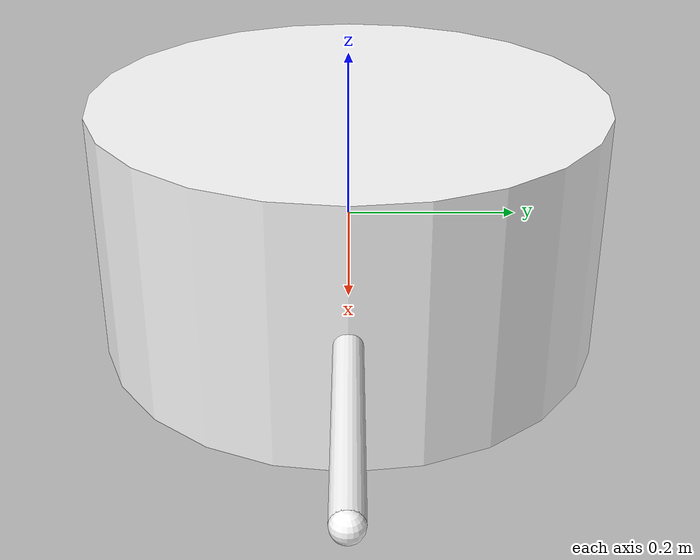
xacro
<?xml version="1.0"?>
<robot xmlns:xacro="http://www.ros.org/wiki/xacro" name="ouzel">

    <xacro:property name="mass_ouzel" value="5.0"/>
    <xacro:property name="ixx_ouzel" value="0.12"/>
    <xacro:property name="iyy_ouzel" value="0.14"/>
    <xacro:property name="izz_ouzel" value="0.18"/>
    <xacro:property name="radius_ouzel" value="0.3"/>
    <xacro:property name="height_ouzel" value="0.3"/>

    <link name="odom_omav"/>

    <joint name="odom_omav_to_omav_base" type="fixed">
        <parent link="odom_omav"/>
        <child link="omav_base"/>
        <origin rpy="0 0 0" xyz="0.0 0.0 0.0"/>
    </joint>

    <link name="omav_base">
        <collision>
            <origin rpy="0 0 0" xyz="0 0 0"/>
            <geometry>
                <cylinder radius="${radius_ouzel}" length="${height_ouzel}"/>
            </geometry>
        </collision>
        <visual>
            <origin rpy="0 0 0" xyz="0 0 0"/>
            <geometry>
                <cylinder radius="${radius_ouzel}" length="${height_ouzel}"/>
            </geometry>
            <material name="">
                <color rgba="1 1 1 1"/>
            </material>
        </visual>
    </link>

    <joint name="omav_to_rod" type="fixed">
        <parent link="omav_base"/>
        <child link="rod"/>
        <origin rpy="0 0 0" xyz="0.275 0.0 0.0"/>
    </joint>

    <link name="rod">
        <collision>
            <origin rpy="0 1.5708 0" xyz="0 0 0"/>
            <geometry>
                <cylinder radius="0.015" length="0.54"/>
            </geometry>
        </collision>
        <visual>
            <origin rpy="0 1.5708 0" xyz="0 0 0"/>
            <geometry>
                <cylinder radius="0.015" length="0.54"/>
            </geometry>
            <material name="">
                <color rgba="1 1 1 1"/>
            </material>
        </visual>
    </link>

    <joint name="rod_to_tip" type="fixed">
        <parent link="rod"/>
        <child link="tip"/>
        <origin rpy="0 0 0" xyz="0.27 0.0 0.0"/>
    </joint>

    <link name="tip">
        <collision>
            <origin rpy="0 0 0" xyz="0 0 0"/>
            <geometry>
                <sphere radius="0.015"/>
            </geometry>
            <material name="">
                <contact name="rubber"/>
            </material>
        </collision>
        <visual>
            <origin rpy="0 0 0" xyz="0 0.0 0"/>
            <geometry>
                <sphere radius="0.015"/>
            </geometry>
            <material name="">
                <color rgba="1 1 1 1"/>
            </material>
        </visual>
    </link>

</robot>
